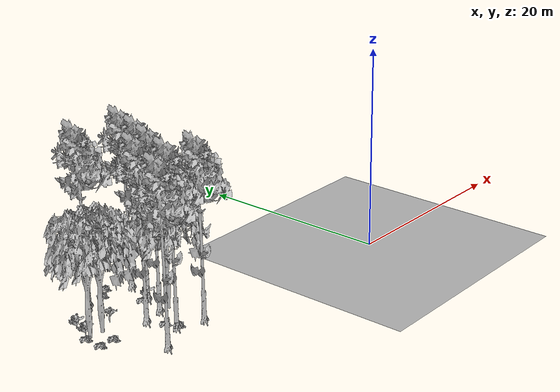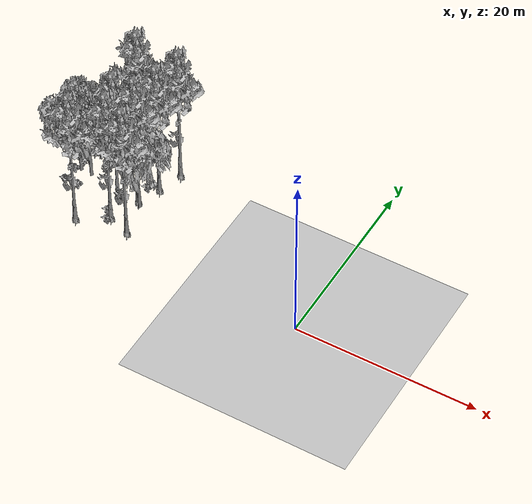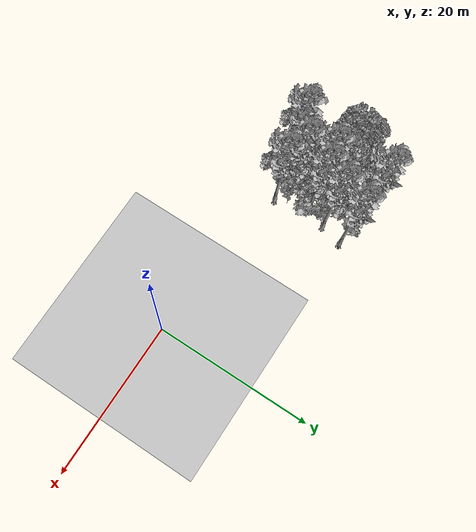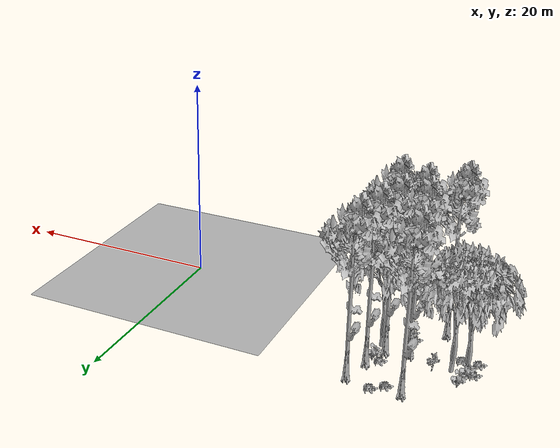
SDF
<sdf version="1.7">
 <world name="default">
  <model name="ground_plane">
   <static>1</static>
   <link name="link">
    <collision name="collision">
     <pose>-50 0 0 0 -0 0</pose>
     <geometry><plane><normal>0 0 1</normal><size>80 80</size></plane></geometry>
     <surface><contact><ode><min_depth>0.01</min_depth><max_vel>0</max_vel></ode></contact></surface>
    </collision>
    <visual name="grass">
     <cast_shadows>0</cast_shadows>
     <geometry>
      <mesh>
       <scale>0.46714285714285714 0.46714285714285714 0.1</scale>
       <uri>file://grass_plane/meshes/grass_plane.dae</uri>
      </mesh>
     </geometry>
    </visual>
   </link>
  </model>
  <model name="Tree 107">
   <static>1</static>
   <pose>-22.05925699789296 6.0745812450443 0 1.57079 -0 0</pose>
   <link name="link">
    <collision name="collision">
     <geometry><mesh><scale>3.5 5 3.5</scale><uri>model://tree_2/meshes/tree_2.obj</uri></mesh></geometry>
    </collision>
    <visual name="visual">
     <geometry><mesh><scale>3.5 5 3.5</scale><uri>model://tree_2/meshes/tree_2.obj</uri></mesh></geometry>
    </visual>
   </link>
  </model>
  <model name="Tree 116">
   <static>1</static>
   <pose>-23.74027668036788 3.3756225722110713 0 1.57079 -0 0</pose>
   <link name="link">
    <collision name="collision">
     <geometry><mesh><scale>3.5 5 3.5</scale><uri>model://tree_9/meshes/tree_9.obj</uri></mesh></geometry>
    </collision>
    <visual name="visual">
     <geometry><mesh><scale>3.5 5 3.5</scale><uri>model://tree_9/meshes/tree_9.obj</uri></mesh></geometry>
    </visual>
   </link>
  </model>
  <model name="Tree 267">
   <static>1</static>
   <pose>-30.131474700806987 7.497619606945847 0 1.57079 -0 0</pose>
   <link name="link">
    <collision name="collision">
     <geometry><mesh><scale>3.5 5 3.5</scale><uri>model://tree_2/meshes/tree_2.obj</uri></mesh></geometry>
    </collision>
    <visual name="visual">
     <geometry><mesh><scale>3.5 5 3.5</scale><uri>model://tree_2/meshes/tree_2.obj</uri></mesh></geometry>
    </visual>
   </link>
  </model>
  <model name="Tree 307">
   <static>1</static>
   <pose>-21.223206965909963 2.4321111649560265 0 1.57079 -0 0</pose>
   <link name="link">
    <collision name="collision">
     <geometry><mesh><scale>3.5 5 3.5</scale><uri>model://tree_9/meshes/tree_9.obj</uri></mesh></geometry>
    </collision>
    <visual name="visual">
     <geometry><mesh><scale>3.5 5 3.5</scale><uri>model://tree_9/meshes/tree_9.obj</uri></mesh></geometry>
    </visual>
   </link>
  </model>
  <model name="Tree 435">
   <static>1</static>
   <pose>-28.808784458990402 7.393712880594379 0 1.57079 -0 0</pose>
   <link name="link">
    <collision name="collision">
     <geometry><mesh><scale>3.5 5 3.5</scale><uri>model://tree_2/meshes/tree_2.obj</uri></mesh></geometry>
    </collision>
    <visual name="visual">
     <geometry><mesh><scale>3.5 5 3.5</scale><uri>model://tree_2/meshes/tree_2.obj</uri></mesh></geometry>
    </visual>
   </link>
  </model>
  <model name="Tree 458">
   <static>1</static>
   <pose>-25.75165703229593 12.404063958829745 0 1.57079 -0 0</pose>
   <link name="link">
    <collision name="collision">
     <geometry><mesh><scale>3.5 5 3.5</scale><uri>model://tree_9/meshes/tree_9.obj</uri></mesh></geometry>
    </collision>
    <visual name="visual">
     <geometry><mesh><scale>3.5 5 3.5</scale><uri>model://tree_9/meshes/tree_9.obj</uri></mesh></geometry>
    </visual>
   </link>
  </model>
  <model name="Tree 466">
   <static>1</static>
   <pose>-20.70580566170131 12.065202677566134 0 1.57079 -0 0</pose>
   <link name="link">
    <collision name="collision">
     <geometry><mesh><scale>3.5 5 3.5</scale><uri>model://tree_9/meshes/tree_9.obj</uri></mesh></geometry>
    </collision>
    <visual name="visual">
     <geometry><mesh><scale>3.5 5 3.5</scale><uri>model://tree_9/meshes/tree_9.obj</uri></mesh></geometry>
    </visual>
   </link>
  </model>
  <model name="Tree 489">
   <static>1</static>
   <pose>-26.807757055142623 1.4206601113501875 0 1.57079 -0 0</pose>
   <link name="link">
    <collision name="collision">
     <geometry><mesh><scale>3.5 5 3.5</scale><uri>model://tree_9/meshes/tree_9.obj</uri></mesh></geometry>
    </collision>
    <visual name="visual">
     <geometry><mesh><scale>3.5 5 3.5</scale><uri>model://tree_9/meshes/tree_9.obj</uri></mesh></geometry>
    </visual>
   </link>
  </model>
  <model name="Tree 553">
   <static>1</static>
   <pose>-22.501081170315736 6.67408749335592 0 1.57079 -0 0</pose>
   <link name="link">
    <collision name="collision">
     <geometry><mesh><scale>3.5 5 3.5</scale><uri>model://tree_9/meshes/tree_9.obj</uri></mesh></geometry>
    </collision>
    <visual name="visual">
     <geometry><mesh><scale>3.5 5 3.5</scale><uri>model://tree_9/meshes/tree_9.obj</uri></mesh></geometry>
    </visual>
   </link>
  </model>
  <model name="Tree 555">
   <static>1</static>
   <pose>-21.508376677030117 9.196671067591595 0 1.57079 -0 0</pose>
   <link name="link">
    <collision name="collision">
     <geometry><mesh><scale>3.5 5 3.5</scale><uri>model://tree_9/meshes/tree_9.obj</uri></mesh></geometry>
    </collision>
    <visual name="visual">
     <geometry><mesh><scale>3.5 5 3.5</scale><uri>model://tree_9/meshes/tree_9.obj</uri></mesh></geometry>
    </visual>
   </link>
  </model>
  <model name="Tree 569">
   <static>1</static>
   <pose>-24.656075683864948 6.162955341800227 0 1.57079 -0 0</pose>
   <link name="link">
    <collision name="collision">
     <geometry><mesh><scale>3.5 5 3.5</scale><uri>model://tree_9/meshes/tree_9.obj</uri></mesh></geometry>
    </collision>
    <visual name="visual">
     <geometry><mesh><scale>3.5 5 3.5</scale><uri>model://tree_9/meshes/tree_9.obj</uri></mesh></geometry>
    </visual>
   </link>
  </model>
  <model name="Bush 180">
   <static>1</static>
   <pose>-23.953671650826955 2.8806620884600562 0 1.57079 -0 0</pose>
   <link name="link">
    <collision name="collision">
     <geometry><mesh><scale>2 2 2</scale><uri>model://bush_2/meshes/bush_2.obj</uri></mesh></geometry>
     <surface><contact><collide_without_contact>false</collide_without_contact></contact></surface>
    </collision>
    <visual name="visual">
     <geometry><mesh><scale>2 2 2</scale><uri>model://bush_2/meshes/bush_2.obj</uri></mesh></geometry>
    </visual>
   </link>
  </model>
  <model name="Bush 225">
   <static>1</static>
   <pose>-30.741767613789104 7.300359985863338 0 1.57079 -0 0</pose>
   <link name="link">
    <collision name="collision">
     <geometry><mesh><scale>2 2 2</scale><uri>model://bush_2/meshes/bush_2.obj</uri></mesh></geometry>
     <surface><contact><collide_without_contact>false</collide_without_contact></contact></surface>
    </collision>
    <visual name="visual">
     <geometry><mesh><scale>2 2 2</scale><uri>model://bush_2/meshes/bush_2.obj</uri></mesh></geometry>
    </visual>
   </link>
  </model>
  <model name="Bush 325">
   <static>1</static>
   <pose>-22.698043698164703 8.693022976213037 0 1.57079 -0 0</pose>
   <link name="link">
    <collision name="collision">
     <geometry><mesh><scale>2 2 2</scale><uri>model://bush_2/meshes/bush_2.obj</uri></mesh></geometry>
     <surface><contact><collide_without_contact>false</collide_without_contact></contact></surface>
    </collision>
    <visual name="visual">
     <geometry><mesh><scale>2 2 2</scale><uri>model://bush_2/meshes/bush_2.obj</uri></mesh></geometry>
    </visual>
   </link>
  </model>
  <model name="Bush 335">
   <static>1</static>
   <pose>-23.214914380667697 13.022110574660346 0 1.57079 -0 0</pose>
   <link name="link">
    <collision name="collision">
     <geometry><mesh><scale>2 2 2</scale><uri>model://bush_2/meshes/bush_2.obj</uri></mesh></geometry>
     <surface><contact><collide_without_contact>false</collide_without_contact></contact></surface>
    </collision>
    <visual name="visual">
     <geometry><mesh><scale>2 2 2</scale><uri>model://bush_2/meshes/bush_2.obj</uri></mesh></geometry>
    </visual>
   </link>
  </model>
  <model name="Bush 368">
   <static>1</static>
   <pose>-30.090629998004303 8.03430926609552 0 1.57079 -0 0</pose>
   <link name="link">
    <collision name="collision">
     <geometry><mesh><scale>2 2 2</scale><uri>model://bush_0/meshes/bush_0.obj</uri></mesh></geometry>
     <surface><contact><collide_without_contact>false</collide_without_contact></contact></surface>
    </collision>
    <visual name="visual">
     <geometry><mesh><scale>2 2 2</scale><uri>model://bush_0/meshes/bush_0.obj</uri></mesh></geometry>
    </visual>
   </link>
  </model>
  <model name="Bush 369">
   <static>1</static>
   <pose>-24.55012407711478 3.972974100776632 0 1.57079 -0 0</pose>
   <link name="link">
    <collision name="collision">
     <geometry><mesh><scale>2 2 2</scale><uri>model://bush_2/meshes/bush_2.obj</uri></mesh></geometry>
     <surface><contact><collide_without_contact>false</collide_without_contact></contact></surface>
    </collision>
    <visual name="visual">
     <geometry><mesh><scale>2 2 2</scale><uri>model://bush_2/meshes/bush_2.obj</uri></mesh></geometry>
    </visual>
   </link>
  </model>
  <model name="Bush 378">
   <static>1</static>
   <pose>-30.758202687654276 5.508387495327554 0 1.57079 -0 0</pose>
   <link name="link">
    <collision name="collision">
     <geometry><mesh><scale>2 2 2</scale><uri>model://bush_2/meshes/bush_2.obj</uri></mesh></geometry>
     <surface><contact><collide_without_contact>false</collide_without_contact></contact></surface>
    </collision>
    <visual name="visual">
     <geometry><mesh><scale>2 2 2</scale><uri>model://bush_2/meshes/bush_2.obj</uri></mesh></geometry>
    </visual>
   </link>
  </model>
  <model name="Bush 402">
   <static>1</static>
   <pose>-24.32159515645818 12.155313315535736 0 1.57079 -0 0</pose>
   <link name="link">
    <collision name="collision">
     <geometry><mesh><scale>2 2 2</scale><uri>model://bush_2/meshes/bush_2.obj</uri></mesh></geometry>
     <surface><contact><collide_without_contact>false</collide_without_contact></contact></surface>
    </collision>
    <visual name="visual">
     <geometry><mesh><scale>2 2 2</scale><uri>model://bush_2/meshes/bush_2.obj</uri></mesh></geometry>
    </visual>
   </link>
  </model>
  <model name="Bush 462">
   <static>1</static>
   <pose>-29.245668103391168 5.491245488687035 0 1.57079 -0 0</pose>
   <link name="link">
    <collision name="collision">
     <geometry><mesh><scale>2 2 2</scale><uri>model://bush_2/meshes/bush_2.obj</uri></mesh></geometry>
     <surface><contact><collide_without_contact>false</collide_without_contact></contact></surface>
    </collision>
    <visual name="visual">
     <geometry><mesh><scale>2 2 2</scale><uri>model://bush_2/meshes/bush_2.obj</uri></mesh></geometry>
    </visual>
   </link>
  </model>
  <model name="Bush 468">
   <static>1</static>
   <pose>-21.95070411690012 8.776828948200233 0 1.57079 -0 0</pose>
   <link name="link">
    <collision name="collision">
     <geometry><mesh><scale>2 2 2</scale><uri>model://bush_0/meshes/bush_0.obj</uri></mesh></geometry>
     <surface><contact><collide_without_contact>false</collide_without_contact></contact></surface>
    </collision>
    <visual name="visual">
     <geometry><mesh><scale>2 2 2</scale><uri>model://bush_0/meshes/bush_0.obj</uri></mesh></geometry>
    </visual>
   </link>
  </model>
  <model name="Bush 534">
   <static>1</static>
   <pose>-27.171612376002088 8.134707199720744 0 1.57079 -0 0</pose>
   <link name="link">
    <collision name="collision">
     <geometry><mesh><scale>2 2 2</scale><uri>model://bush_5/meshes/bush_5.obj</uri></mesh></geometry>
     <surface><contact><collide_without_contact>false</collide_without_contact></contact></surface>
    </collision>
    <visual name="visual">
     <geometry><mesh><scale>2 2 2</scale><uri>model://bush_5/meshes/bush_5.obj</uri></mesh></geometry>
    </visual>
   </link>
  </model>
  <model name="Bush 633">
   <static>1</static>
   <pose>-29.73270469056178 9.572964606687869 0 1.57079 -0 0</pose>
   <link name="link">
    <collision name="collision">
     <geometry><mesh><scale>2 2 2</scale><uri>model://bush_0/meshes/bush_0.obj</uri></mesh></geometry>
     <surface><contact><collide_without_contact>false</collide_without_contact></contact></surface>
    </collision>
    <visual name="visual">
     <geometry><mesh><scale>2 2 2</scale><uri>model://bush_0/meshes/bush_0.obj</uri></mesh></geometry>
    </visual>
   </link>
  </model>
 </world>
</sdf>
